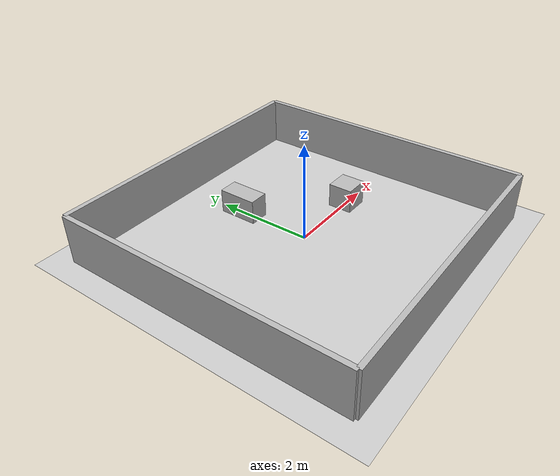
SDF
<?xml version="1.0" ?>
<sdf version="1.6">
  <world name="martha_test_world">

    <!-- Física -->
    <physics name="default_physics" type="ode">
      <max_step_size>0.001</max_step_size>
      <real_time_update_rate>1000</real_time_update_rate>
      <real_time_factor>1.0</real_time_factor>
    </physics>

    <!-- Gravedad -->
    <gravity>0 0 -9.81</gravity>

    <!-- Luz -->
    <include>
      <uri>model://sun</uri>
    </include>

    <!-- Piso -->
    <include>
      <uri>model://ground_plane</uri>
    </include>

    <!-- Obstáculo 1 -->
    <model name="box_obstacle_1">
      <static>true</static>
      <pose>1.5 0.0 0.25 0 0 0</pose>

      <link name="link">
        <collision name="collision">
          <geometry>
            <box>
              <size>0.5 0.5 0.5</size>
            </box>
          </geometry>
        </collision>

        <visual name="visual">
          <geometry>
            <box>
              <size>0.5 0.5 0.5</size>
            </box>
          </geometry>
        </visual>
      </link>
    </model>

    <!-- Obstáculo 2 -->
    <model name="box_obstacle_2">
      <static>true</static>
      <pose>0.0 1.5 0.25 0 0 0</pose>

      <link name="link">
        <collision name="collision">
          <geometry>
            <box>
              <size>0.4 0.8 0.5</size>
            </box>
          </geometry>
        </collision>

        <visual name="visual">
          <geometry>
            <box>
              <size>0.4 0.8 0.5</size>
            </box>
          </geometry>
        </visual>
      </link>
    </model>

    <!-- Pared izquierda -->
    <model name="wall_left">
      <static>true</static>
      <pose>0 3 0.5 0 0 0</pose>

      <link name="link">
        <collision name="collision">
          <geometry>
            <box>
              <size>6 0.1 1</size>
            </box>
          </geometry>
        </collision>

        <visual name="visual">
          <geometry>
            <box>
              <size>6 0.1 1</size>
            </box>
          </geometry>
        </visual>
      </link>
    </model>

    <!-- Pared derecha -->
    <model name="wall_right">
      <static>true</static>
      <pose>0 -3 0.5 0 0 0</pose>

      <link name="link">
        <collision name="collision">
          <geometry>
            <box>
              <size>6 0.1 1</size>
            </box>
          </geometry>
        </collision>

        <visual name="visual">
          <geometry>
            <box>
              <size>6 0.1 1</size>
            </box>
          </geometry>
        </visual>
      </link>
    </model>

    <!-- Pared frontal -->
    <model name="wall_front">
      <static>true</static>
      <pose>3 0 0.5 0 0 0</pose>

      <link name="link">
        <collision name="collision">
          <geometry>
            <box>
              <size>0.1 6 1</size>
            </box>
          </geometry>
        </collision>

        <visual name="visual">
          <geometry>
            <box>
              <size>0.1 6 1</size>
            </box>
          </geometry>
        </visual>
      </link>
    </model>

    <!-- Pared trasera -->
    <model name="wall_back">
      <static>true</static>
      <pose>-3 0 0.5 0 0 0</pose>

      <link name="link">
        <collision name="collision">
          <geometry>
            <box>
              <size>0.1 6 1</size>
            </box>
          </geometry>
        </collision>

        <visual name="visual">
          <geometry>
            <box>
              <size>0.1 6 1</size>
            </box>
          </geometry>
        </visual>
      </link>
    </model>

  </world>
</sdf>
